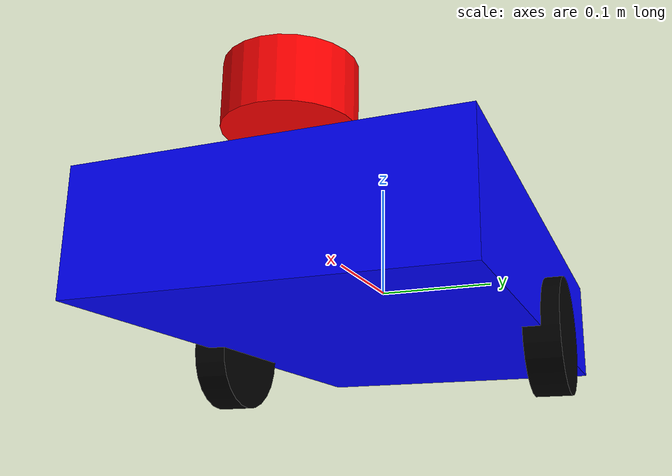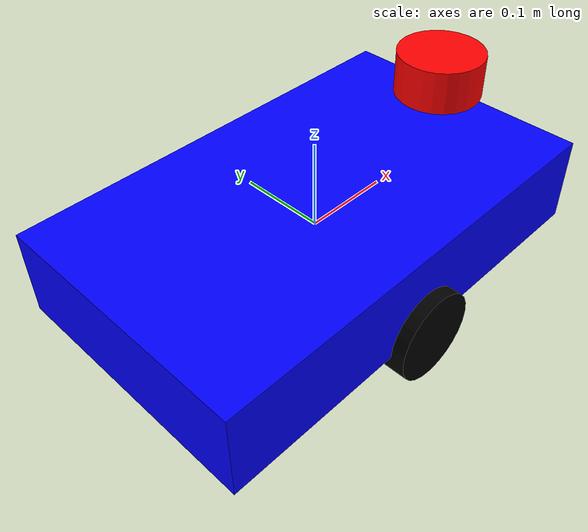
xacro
<?xml version="1.0"?>
<robot xmlns:xacro="http://www.ros.org/wiki/xacro" name="my_rover">

  <!-- Include the LiDAR XACRO file -->
  <xacro:include filename="$(find my_rover_package)/urdf/lidar.xacro"/>

  <!-- Base link -->
  <link name="base_link">
    <visual>
      <geometry>
        <box size="0.5 0.3 0.1"/>
      </geometry>
      <material name="blue">
        <color rgba="0 0 1 1"/>
      </material>
    </visual>
    <collision>
      <geometry>
        <box size="0.5 0.3 0.1"/>
      </geometry>
    </collision>
    <inertial>
      <mass value="10.0"/>
      <inertia ixx="0.1" ixy="0.0" ixz="0.0" iyy="0.1" iyz="0.0" izz="0.1"/>
    </inertial>
  </link>

  <!-- Use the LiDAR macro -->
  <xacro:lidar_sensor parent="base_link">
    <origin xyz="0.2 0 0.1" rpy="0 0 0"/>
  </xacro:lidar_sensor>

  <!-- Gazebo plugin for differential drive -->
  <gazebo>
    <plugin name="differential_drive_controller" filename="libgazebo_ros_diff_drive.so">
      <update_rate>50</update_rate>
      <left_joint>left_wheel_joint</left_joint>
      <right_joint>right_wheel_joint</right_joint>
      <wheel_separation>0.3</wheel_separation>
      <wheel_diameter>0.1</wheel_diameter>
      <command_topic>cmd_vel</command_topic>
      <odometry_topic>odom</odometry_topic>
      <odometry_frame>odom</odometry_frame>
      <robot_base_frame>base_link</robot_base_frame>
      <publish_odom>true</publish_odom>
      <publish_odom_tf>true</publish_odom_tf>
      <publish_wheel_tf>false</publish_wheel_tf>
    </plugin>
  </gazebo>

  <!-- Add wheels (simplified example) -->
  <link name="left_wheel">
    <visual>
      <geometry>
        <cylinder radius="0.05" length="0.03"/>
      </geometry>
      <material name="black">
        <color rgba="0 0 0 1"/>
      </material>
    </visual>
    <collision>
      <geometry>
        <cylinder radius="0.05" length="0.03"/>
      </geometry>
    </collision>
    <inertial>
      <mass value="0.5"/>
      <inertia ixx="0.01" ixy="0.0" ixz="0.0" iyy="0.01" iyz="0.0" izz="0.01"/>
    </inertial>
  </link>

  <joint name="left_wheel_joint" type="continuous">
    <parent link="base_link"/>
    <child link="left_wheel"/>
    <origin xyz="0 0.15 -0.05" rpy="-1.5707 0 0"/>
    <axis xyz="0 0 1"/>
  </joint>

  <link name="right_wheel">
    <visual>
      <geometry>
        <cylinder radius="0.05" length="0.03"/>
      </geometry>
      <material name="black">
        <color rgba="0 0 0 1"/>
      </material>
    </visual>
    <collision>
      <geometry>
        <cylinder radius="0.05" length="0.03"/>
      </geometry>
    </collision>
    <inertial>
      <mass value="0.5"/>
      <inertia ixx="0.01" ixy="0.0" ixz="0.0" iyy="0.01" iyz="0.0" izz="0.01"/>
    </inertial>
  </link>

  <joint name="right_wheel_joint" type="continuous">
    <parent link="base_link"/>
    <child link="right_wheel"/>
    <origin xyz="0 -0.15 -0.05" rpy="-1.5707 0 0"/>
    <axis xyz="0 0 1"/>
  </joint>

</robot>

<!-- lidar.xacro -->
<robot xmlns:xacro="http://www.ros.org/wiki/xacro">

  <xacro:macro name="lidar_sensor" params="parent *origin">

    <link name="lidar_link">
      <visual>
        <geometry>
          <cylinder radius="0.05" length="0.05"/>
        </geometry>
        <material name="lidar_red">
          <color rgba="1 0 0 1"/>
        </material>
      </visual>
      <collision>
        <geometry>
          <cylinder radius="0.05" length="0.05"/>
        </geometry>
      </collision>
      <inertial>
        <mass value="0.15"/>
        <inertia ixx="0.001" ixy="0.0" ixz="0.0" iyy="0.001" iyz="0.0" izz="0.001"/>
      </inertial>
    </link>

    <joint name="lidar_joint" type="fixed">
      <parent link="${parent}"/>
      <child link="lidar_link"/>
      <xacro:insert_block name="origin"/>
    </joint>

    <gazebo reference="lidar_link">
      <material>Gazebo/Red</material>
      <sensor type="ray" name="lidar">
        <pose>0 0 0 0 0 0</pose>
        <visualize>true</visualize>
        <update_rate>10</update_rate>
        <ray>
          <scan>
            <horizontal>
              <samples>360</samples>
              <resolution>1</resolution>
              <min_angle>-3.14159</min_angle>
              <max_angle>3.14159</max_angle>
            </horizontal>
          </scan>
          <range>
            <min>0.1</min>
            <max>10.0</max>
            <resolution>0.01</resolution>
          </range>
        </ray>
        <plugin name="gazebo_ros_lidar" filename="libgazebo_ros_ray_sensor.so">
          <ros>
            <remapping>~/out:=/scan</remapping>
          </ros>
          <output_type>sensor_msgs/LaserScan</output_type>
          <frame_name>lidar_link</frame_name>
        </plugin>
      </sensor>
    </gazebo>

  </xacro:macro>

</robot>
